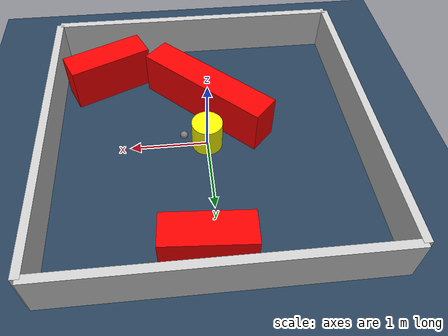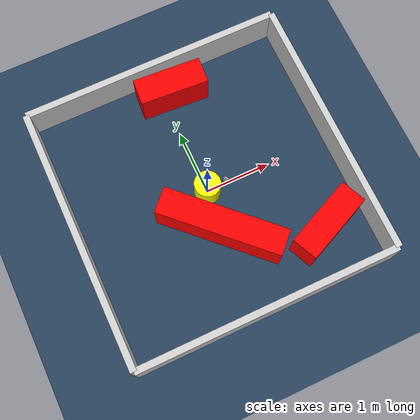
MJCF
<?xml version="1.0" ?>
<mujoco model="generated_environment">
  <option timestep="0.01" integrator="RK4" cone="elliptic"/>
  <default>
    <geom density="1"/>
  </default>
  <asset>
    <texture builtin="gradient" height="3072" rgb1="0.3 0.5 0.7" rgb2="0 0 0" type="skybox" width="512"/>
    <texture builtin="checker" height="300" mark="edge" markrgb="0.8 0.8 0.8" name="groundplane" rgb1="0.2 0.3 0.4" rgb2="0.1 0.2 0.3" type="2d" width="300"/>
    <material name="groundplane" reflectance="0.2" texrepeat="5 5" texture="groundplane" texuniform="true"/>
    <material name="robot" rgba="0.0 1.0 0.0 1"/>
  </asset>
  <worldbody>
    <light dir="0 0 -1" directional="true" pos="0 0 1.5"/>
    <geom condim="4" friction="1.0 0.005 0.001" material="groundplane" name="floor" size="0 0 0.05" type="plane"/>
    <body name="walls">
      <geom name="wall_1" condim="4" pos="-2.0 0.0 0.3" rgba="0.800000011920929 0.800000011920929 0.800000011920929 1.0" size="0.05 2.0 0.3" type="box"/>
      <geom name="wall_2" condim="4" pos="2.0 0.0 0.3" rgba="0.800000011920929 0.800000011920929 0.800000011920929 1.0" size="0.05 2.0 0.3" type="box"/>
      <geom name="wall_3" condim="4" pos="0.0 -2.0 0.3" rgba="0.800000011920929 0.800000011920929 0.800000011920929 1.0" size="2.0 0.05 0.3" type="box"/>
      <geom name="wall_4" condim="4" pos="0.0 2.0 0.3" rgba="0.800000011920929 0.800000011920929 0.800000011920929 1.0" size="2.0 0.05 0.3" type="box"/>
    </body>
    <body name="robot">
      <joint name="joint_x" type="slide" pos="0 0 0" axis="1 0 0"/>
      <joint name="joint_y" type="slide" pos="0 0 0" axis="0 1 0"/>
      <geom name="robot" type="sphere" pos="0.3 0.0 0.2" size="0.05" mass="5." friction="1.0 0.005 0.0001" condim="4" rgba="0.5 0.5 0.5 1.0"/>
      <site name="sensor_ball"/>
    </body>
    <body name="obstacle_movable_1">
      <geom name="obstacle_movable_1" condim="4" pos="0.0 0.0 0.2" euler="0 0 0.0" friction="1.0 0.005 0.001" rgba="1.0 1.0 0.0 1.0" size="0.2 0.2 0.0" type="cylinder" mass="0.1"/>
      <joint type="free"/>
    </body>
    <body name="obstacle_2_static">
      <geom name="obstacle_2_static" condim="4" pos="-0.06745317009701468 -0.6361234351856326 0.3" euler="0 0 315.834439969624" friction="1.0 0.005 0.001" rgba="1 0 0 1" size="0.9436463336302214 0.2 0.3" type="box"/>
    </body>
    <body name="obstacle_3_static">
      <geom name="obstacle_3_static" condim="4" pos="0.14808687949769617 1.6237004203278305 0.3" euler="0 0 176.38274395711798" friction="1.0 0.005 0.001" rgba="1 0 0 1" size="0.5206489826494624 0.2 0.3" type="box"/>
    </body>
    <body name="obstacle_4_static">
      <geom name="obstacle_4_static" condim="4" pos="1.2980496567593867 -1.2511421455114435 0.3" euler="0 0 204.2426376869556" friction="1.0 0.005 0.001" rgba="1 0 0 1" size="0.5577389314961296 0.2 0.3" type="box"/>
    </body>
  </worldbody>
  <actuator>
    <motor name="actuator_x" joint="joint_x" gear="1" ctrlrange="-1 1"/>
    <motor name="actuator_y" joint="joint_y" gear="1" ctrlrange="-1 1"/>
  </actuator>
</mujoco>
